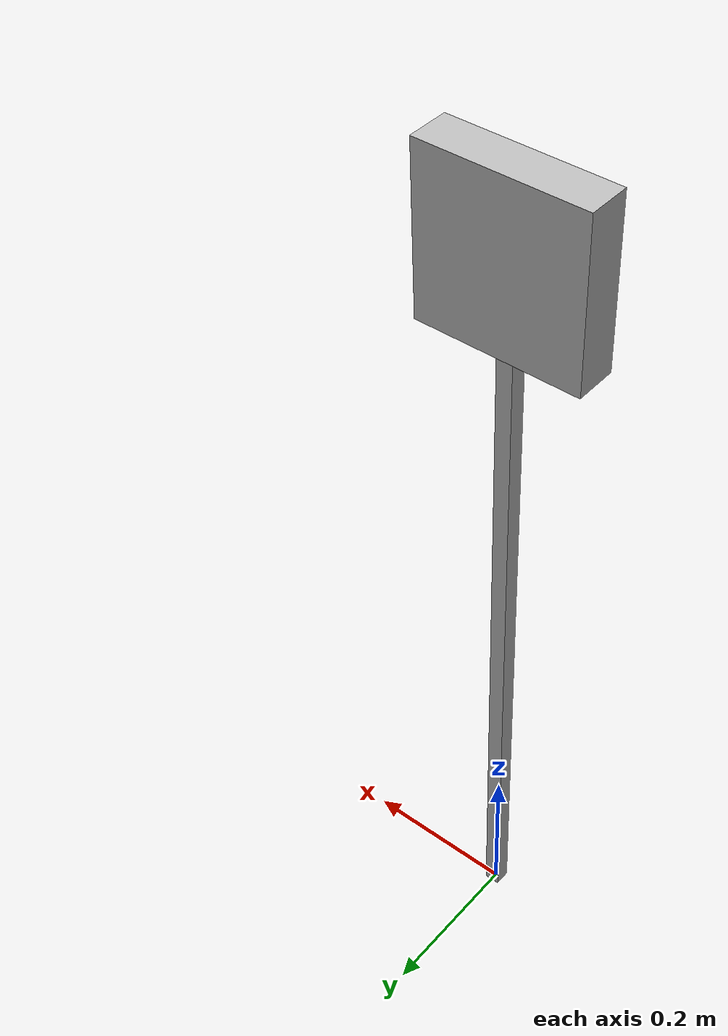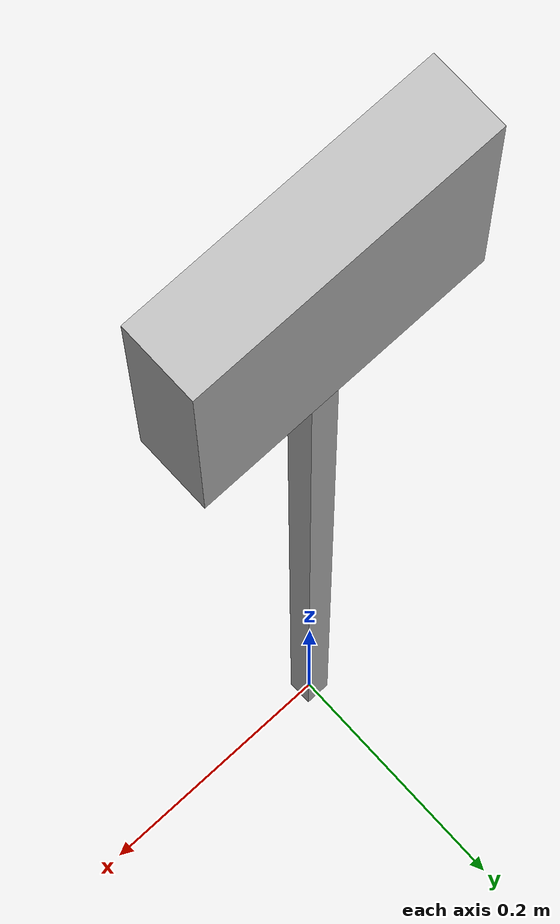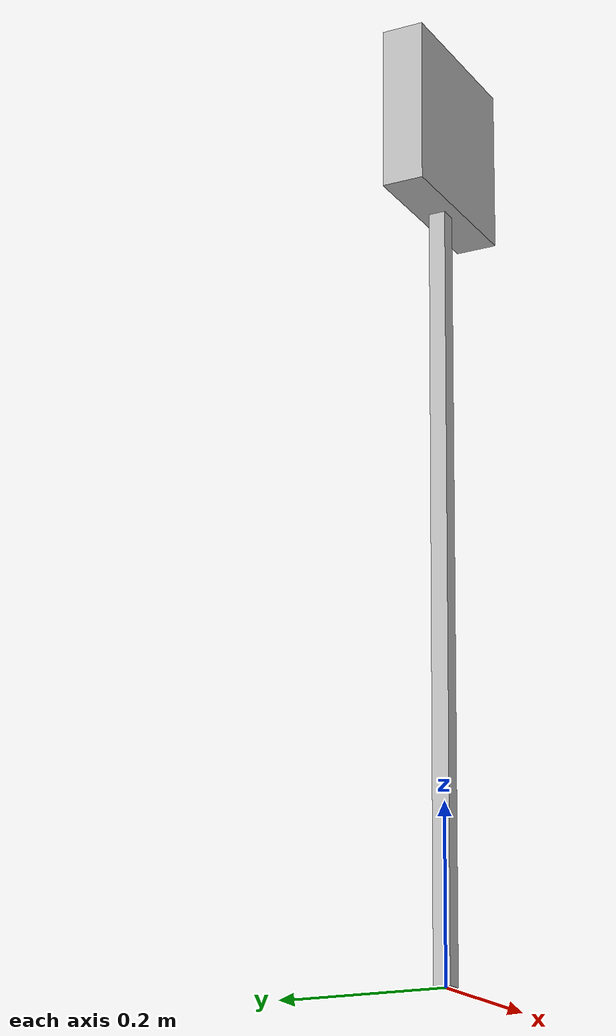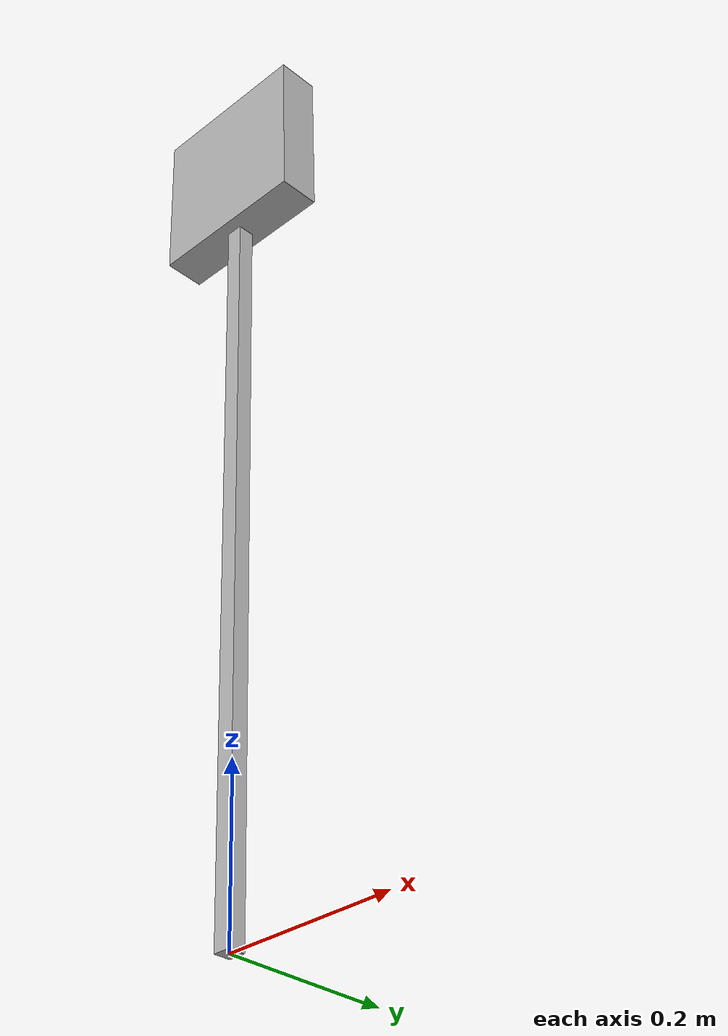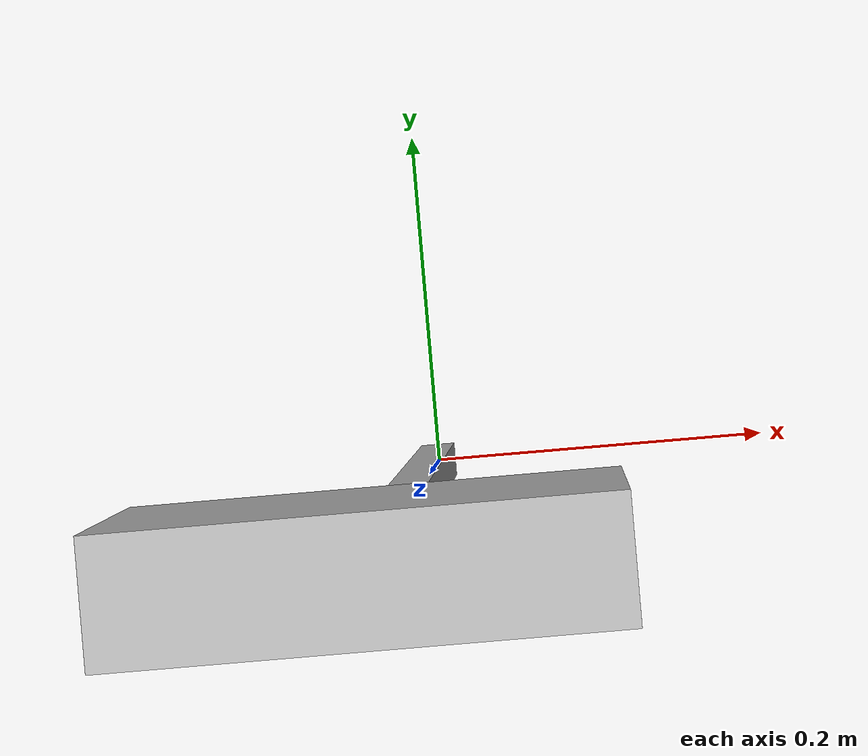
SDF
<?xml version="1.0"?>
<sdf version="1.6">
  <model name="aruco_tag">
    <static>true</static> <!-- Make the tag static, so it doesn't move unless you explicitly move it -->
    <link name="link">
      <visual name="visual">
        <pose>0 0 1.0 0 1.570 1.570</pose>
        <geometry>
          <box>
            <size>0.2 0.2 0.05</size> <!-- Size of the ARUCO tag in meters (adjust as needed) -->
          </box>
        </geometry>
        <material>
          <script>
            <uri>model://arucotag1/materials/scripts/aruco_tag.material</uri>
            <uri>model://arucotag1/materials/textures/aruco0.png</uri>
            <name>aruco_tag/texture</name>
          </script>
        </material>
      </visual>
      <collision name="collision">
        <pose>0 0 1.0 0 1.570 1.570</pose>
        <geometry>
          <box>
            <size>0.2 0.2 0.05</size> <!-- Collision geometry same size as visual -->
          </box>
        </geometry>
      </collision>
    </link>

    <link name="post">
      <visual name="visual">
        <pose>0 0 0.50 0 0 0</pose>
        <geometry>
          <box>
            <size>0.02 0.02 1.0</size> <!-- Size of the ARUCO tag in meters (adjust as needed) -->
          </box>
        </geometry>
      </visual>
      <collision name="collision">
        <pose>0 0 0.50 0 0 0</pose>
        <geometry>
          <box>
            <size>0.02 0.02 1.0</size> <!-- Collision geometry same size as visual -->
          </box>
        </geometry>
      </collision>
    </link>
  </model>
</sdf>
